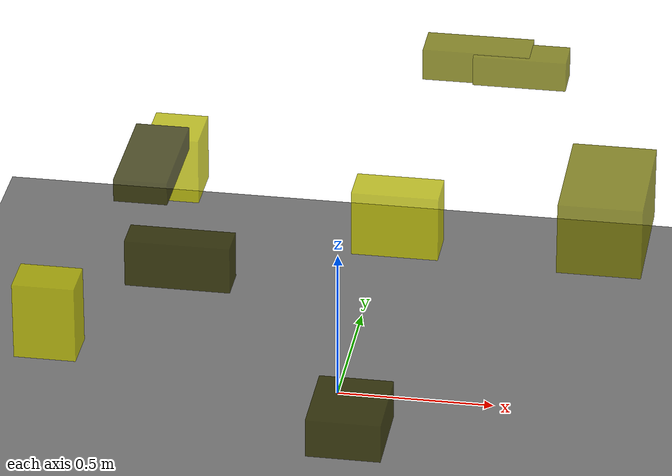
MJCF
<?xml version="1.0"?>
<mujoco model="obstacle_scene">
  <compiler angle="radian" coordinate="local"/>
  <option timestep="0.001" gravity="0 0 -9.81"/>

  <asset>
    <material name="obstacle_mat" rgba="0.8 0.8 0.0 0.8"/>
    <material name="ground_mat" rgba="0.5 0.5 0.5 1"/>
  </asset>

  <worldbody>
    <!-- Ground plane -->
    <geom name="ground" type="plane" size="3 3 0.1" material="ground_mat"/>

    <!-- Obstacles -->
    <body name="obstacle_0" pos="-0.506142 -0.423217 1.009246">
      <geom name="obs_0" type="box" size="0.081942 0.183950 0.036135" rgba="0.2 0.2 0.0 0.8"/>
    </body>
    <body name="obstacle_1" pos="0.900718 -0.620861 1.076167">
      <geom name="obs_1" type="box" size="0.124746 0.195028 0.112126" rgba="0.5 0.5 0.0 0.8"/>
    </body>
    <body name="obstacle_2" pos="-0.663995 0.796838 0.375058">
      <geom name="obs_2" type="box" size="0.086907 0.092257 0.113399" rgba="0.8 0.8 0.0 0.8"/>
    </body>
    <body name="obstacle_3" pos="-0.364638 -0.721669 0.856579">
      <geom name="obs_3" type="box" size="0.159394 0.052956 0.074317" rgba="0.2 0.2 0.0 0.8"/>
    </body>
    <body name="obstacle_4" pos="0.494751 0.616037 0.898883">
      <geom name="obs_4" type="box" size="0.149141 0.058365 0.049147" rgba="0.5 0.5 0.0 0.8"/>
    </body>
    <body name="obstacle_5" pos="0.109895 0.539216 0.357782">
      <geom name="obs_5" type="box" size="0.142183 0.068238 0.111656" rgba="0.8 0.8 0.0 0.8"/>
    </body>
    <body name="obstacle_6" pos="0.100667 -0.404961 0.155007">
      <geom name="obs_6" type="box" size="0.117720 0.138248 0.064064" rgba="0.2 0.2 0.0 0.8"/>
    </body>
    <body name="obstacle_7" pos="0.353207 0.640024 0.899483">
      <geom name="obs_7" type="box" size="0.171292 0.063212 0.052654" rgba="0.5 0.5 0.0 0.8"/>
    </body>
    <body name="obstacle_8" pos="-0.860071 -0.341622 0.411354">
      <geom name="obs_8" type="box" size="0.098228 0.069593 0.127478" rgba="0.8 0.8 0.0 0.8"/>
    </body>
  </worldbody>
</mujoco>
